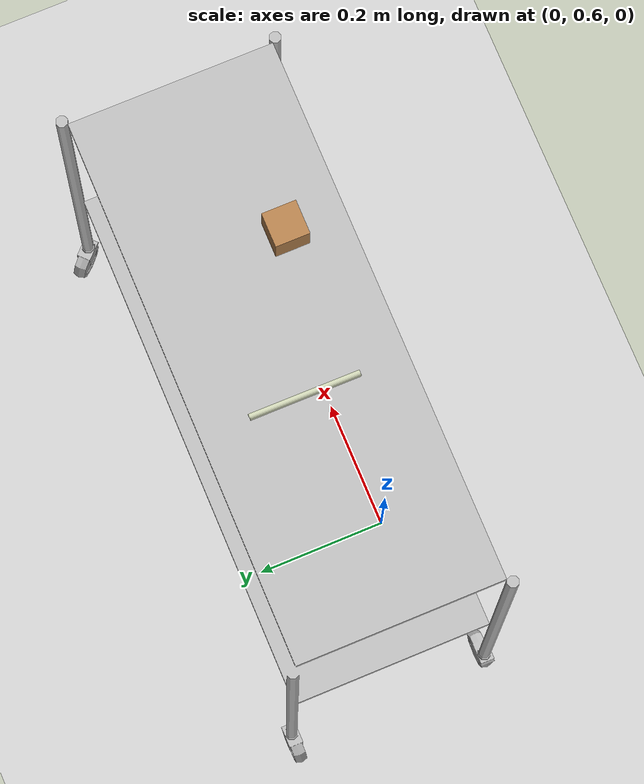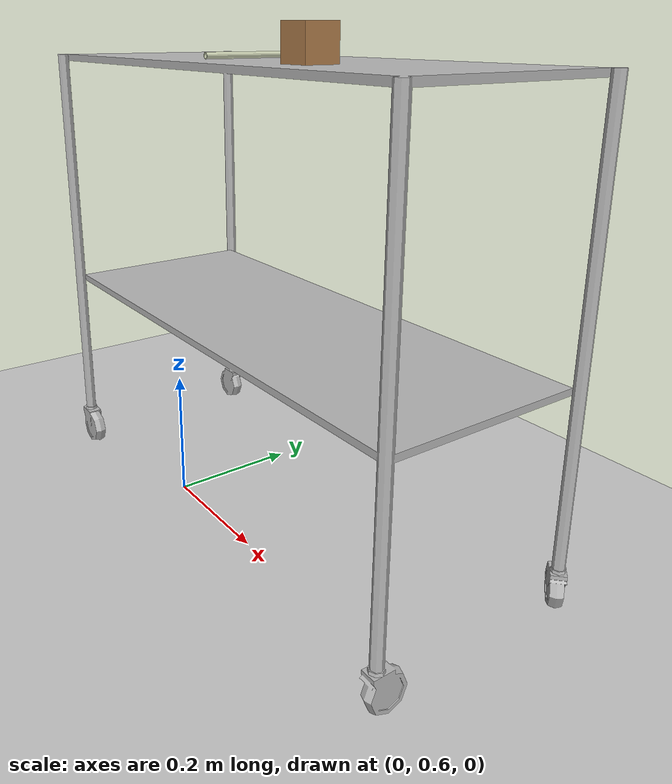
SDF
<sdf version="1.7">
 <world name="default">
  <light name="sun" type="directional">
   <pose>0 0 10 0 -0 0</pose>
   <diffuse>0.8 0.8 0.8 1</diffuse>
   <specular>0.2 0.2 0.2 1</specular>
   <attenuation>
    <range>1000</range>
    <constant>0.9</constant>
    <linear>0.01</linear>
    <quadratic>0.001</quadratic>
   </attenuation>
   <direction>-0.5 0.1 -0.9</direction>
   <spot><inner_angle>0</inner_angle><outer_angle>0</outer_angle><falloff>0</falloff></spot>
  </light>
  <model name="ground_plane">
   <static>1</static>
   <link name="link">
    <collision name="collision">
     <geometry><plane><normal>0 0 1</normal><size>100 100</size></plane></geometry>
     <surface><friction><ode><mu>100</mu><mu2>50</mu2></ode></friction></surface>
    </collision>
    <visual name="visual">
     <cast_shadows>0</cast_shadows>
     <geometry><plane><normal>0 0 1</normal><size>100 100</size></plane></geometry>
     <material>
      <script><uri>file://media/materials/scripts/gazebo.material</uri><name>Gazebo/Grey</name></script>
     </material>
    </visual>
   </link>
  </model>
  <gravity>0 0 -9.8</gravity>
  <magnetic_field>6e-06 2.3e-05 -4.2e-05</magnetic_field>
  <atmosphere type="adiabatic"/>
  <physics type="ode">
   <max_step_size>0.001</max_step_size>
   <real_time_factor>1</real_time_factor>
   <real_time_update_rate>1000</real_time_update_rate>
  </physics>
  <scene><ambient>0.4 0.4 0.4 1</ambient><background>0.7 0.7 0.7 1</background><shadows>1</shadows></scene>
  <spherical_coordinates>
   <surface_model>EARTH_WGS84</surface_model>
   <latitude_deg>0</latitude_deg>
   <longitude_deg>0</longitude_deg>
   <elevation>0</elevation>
   <heading_deg>0</heading_deg>
  </spherical_coordinates>
  <model name="SurgicalTrolley">
   <static>1</static>
   <link name="body">
    <visual name="visual">
     <geometry><mesh><uri>model://SurgicalTrolley/meshes/trolley.obj</uri></mesh></geometry>
    </visual>
    <collision name="collision">
     <geometry><mesh><uri>model://SurgicalTrolley/meshes/trolley.obj</uri></mesh></geometry>
    </collision>
   </link>
   <pose>0.15505 0.697964 0 0 -0 0</pose>
  </model>
  <model name="tube_9_5mm">
   <link name="link">
    <pose>0.126014 -0.084416 0.709462 1.6042 -0 0</pose>
    <inertial>
     <mass>0.0048</mass>
     <inertia>
      <ixx>1.02839e-05</ixx>
      <ixy>0</ixy>
      <ixz>0</ixz>
      <iyy>1.02839e-05</iyy>
      <iyz>0</iyz>
      <izz>8.79e-08</izz>
     </inertia>
    </inertial>
    <visual name="visual">
     <geometry><mesh><uri>model://tube_9_5mm/meshes/tube_9_5.dae</uri></mesh></geometry>
     <material><shader type="pixel"/></material>
    </visual>
    <collision name="collision">
     <geometry>
      <mesh><uri>/home/kb2205/.gazebo/models/tube_9_5mm/meshes/tube_9_5.dae</uri><scale>1 1 1</scale></mesh>
     </geometry>
     <surface>
      <friction>
       <ode><mu>1</mu><mu2>1</mu2><fdir1>0 0 0</fdir1><slip1>0</slip1><slip2>0</slip2></ode>
       <torsional>
        <coefficient>1</coefficient>
        <patch_radius>0</patch_radius>
        <surface_radius>0.01</surface_radius>
        <use_patch_radius>0</use_patch_radius>
        <ode><slip>0</slip></ode>
       </torsional>
      </friction>
      <bounce><restitution_coefficient>0</restitution_coefficient><threshold>1e+06</threshold></bounce>
      <contact>
       <collide_without_contact>0</collide_without_contact>
       <collide_without_contact_bitmask>1</collide_without_contact_bitmask>
       <collide_bitmask>1</collide_bitmask>
       <ode>
        <soft_cfm>0</soft_cfm>
        <soft_erp>0.2</soft_erp>
        <kp>100000</kp>
        <kd>100</kd>
        <max_vel>100</max_vel>
        <min_depth>0.001</min_depth>
       </ode>
       <bullet>
        <split_impulse>1</split_impulse>
        <split_impulse_penetration_threshold>-0.01</split_impulse_penetration_threshold>
        <soft_cfm>0</soft_cfm>
        <soft_erp>0.2</soft_erp>
        <kp>100000</kp>
        <kd>100</kd>
       </bullet>
      </contact>
     </surface>
    </collision>
   </link>
   <static>0</static>
   <pose>-0.068386 0.757689 0.001675 -0.035217 0.037273 -0.004992</pose>
  </model>
  <model name="wood_cube_5cm">
   <link name="link">
    <pose>0.062781 -0.057038 0.731992 0 -0 0</pose>
    <inertial>
     <mass>0.0565</mass>
     <inertia>
      <ixx>2.35417e-05</ixx>
      <ixy>0</ixy>
      <ixz>0</ixz>
      <iyy>2.35417e-05</iyy>
      <iyz>0</iyz>
      <izz>2.35417e-05</izz>
     </inertia>
    </inertial>
    <visual name="visual">
     <geometry><box><size>0.05 0.05 0.05</size></box></geometry>
     <material>
      <script><uri>file://media/materials/scripts/gazebo.material</uri><name>Gazebo/Wood</name></script>
      <shader type="pixel"/>
     </material>
    </visual>
    <collision name="collision">
     <geometry><box><size>0.05 0.05 0.05</size></box></geometry>
     <surface>
      <friction>
       <ode><mu>1</mu><mu2>1</mu2><fdir1>0 0 0</fdir1><slip1>0</slip1><slip2>0</slip2></ode>
       <torsional>
        <coefficient>1</coefficient>
        <patch_radius>0</patch_radius>
        <surface_radius>0.05</surface_radius>
        <use_patch_radius>0</use_patch_radius>
        <ode><slip>0</slip></ode>
       </torsional>
      </friction>
      <bounce><restitution_coefficient>0</restitution_coefficient><threshold>1e+06</threshold></bounce>
      <contact>
       <collide_without_contact>0</collide_without_contact>
       <collide_without_contact_bitmask>1</collide_without_contact_bitmask>
       <collide_bitmask>1</collide_bitmask>
       <ode>
        <soft_cfm>0</soft_cfm>
        <soft_erp>0.2</soft_erp>
        <kp>100000</kp>
        <kd>1</kd>
        <max_vel>1</max_vel>
        <min_depth>0.001</min_depth>
       </ode>
       <bullet>
        <split_impulse>1</split_impulse>
        <split_impulse_penetration_threshold>-0.01</split_impulse_penetration_threshold>
        <soft_cfm>0</soft_cfm>
        <soft_erp>0.2</soft_erp>
        <kp>100000</kp>
        <kd>1</kd>
       </bullet>
      </contact>
     </surface>
    </collision>
   </link>
   <static>0</static>
   <pose>0.238609 0.691629 -0.003964 0 -0 0</pose>
  </model>
 </world>
</sdf>
